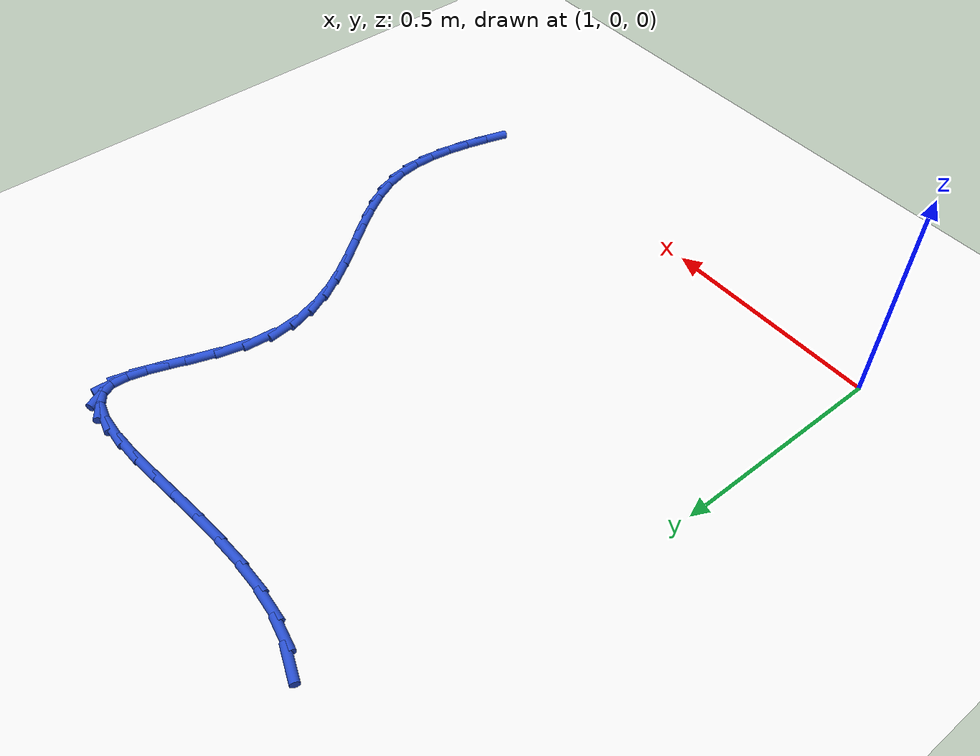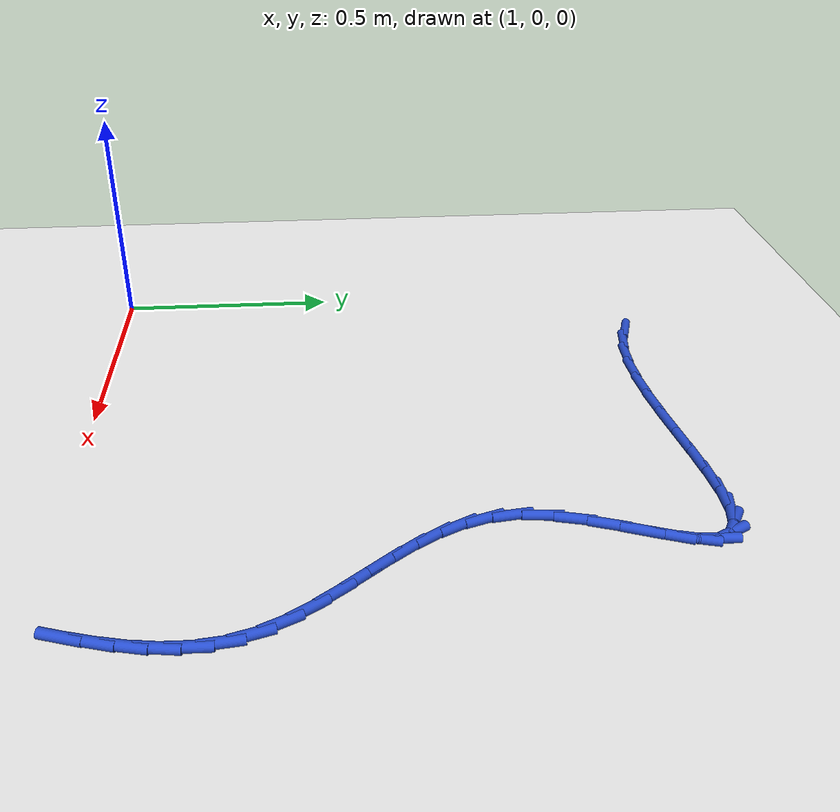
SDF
<sdf version="1.6">
 <world name="default">
  <model name="ground_plane">
   <static>1</static>
   <link name="link">
    <collision name="collision">
     <geometry><plane><normal>0 0 1</normal><size>100 100</size></plane></geometry>
     <surface><friction><ode><mu>100</mu><mu2>50</mu2></ode></friction></surface>
    </collision>
    <visual name="visual">
     <cast_shadows>0</cast_shadows>
     <geometry><plane><normal>0 0 1</normal><size>100 100</size></plane></geometry>
     <material>
      <script><uri>file://media/materials/scripts/gazebo.material</uri><name>Gazebo/WhiteGlow</name></script>
     </material>
    </visual>
   </link>
  </model>
  <model name="line">
   <link name="link_38">
    <pose>1.2145151508487457 1.2407935913253583 0.01 0 1.57 -0.3454019647571306</pose>
    <collision name="collision">
     <geometry><cylinder><radius>0.01</radius><length>0.08</length></cylinder></geometry>
    </collision>
    <visual name="visual">
     <material>
      <script><name>Gazebo/Blue</name><uri>file://media/materials/scripts/gazebo.material</uri></script>
     </material>
     <geometry><cylinder><radius>0.01</radius><length>0.08</length></cylinder></geometry>
    </visual>
   </link>
   <link name="link_39">
    <pose>1.2683129445316885 1.2214357203151238 0.01 0 1.57 -0.17920527930912616</pose>
    <collision name="collision">
     <geometry><cylinder><radius>0.01</radius><length>0.08</length></cylinder></geometry>
    </collision>
    <visual name="visual">
     <material>
      <script><name>Gazebo/Blue</name><uri>file://media/materials/scripts/gazebo.material</uri></script>
     </material>
     <geometry><cylinder><radius>0.01</radius><length>0.08</length></cylinder></geometry>
    </visual>
   </link>
   <link name="link_40">
    <pose>1.3283586011334718 1.2105585330023614 0.01 0 1.57 -0.060016969714293315</pose>
    <collision name="collision">
     <geometry><cylinder><radius>0.01</radius><length>0.08</length></cylinder></geometry>
    </collision>
    <visual name="visual">
     <material>
      <script><name>Gazebo/Blue</name><uri>file://media/materials/scripts/gazebo.material</uri></script>
     </material>
     <geometry><cylinder><radius>0.01</radius><length>0.08</length></cylinder></geometry>
    </visual>
   </link>
   <link name="link_41">
    <pose>1.3930771565046371 1.2066696510045476 0.01 0 1.57 0.02369253003492182</pose>
    <collision name="collision">
     <geometry><cylinder><radius>0.01</radius><length>0.08</length></cylinder></geometry>
    </collision>
    <visual name="visual">
     <material>
      <script><name>Gazebo/Blue</name><uri>file://media/materials/scripts/gazebo.material</uri></script>
     </material>
     <geometry><cylinder><radius>0.01</radius><length>0.08</length></cylinder></geometry>
    </visual>
   </link>
   <link name="link_42">
    <pose>1.4608936464957256 1.2082766959391587 0.01 0 1.57 0.08073897221709905</pose>
    <collision name="collision">
     <geometry><cylinder><radius>0.01</radius><length>0.08</length></cylinder></geometry>
    </collision>
    <visual name="visual">
     <material>
      <script><name>Gazebo/Blue</name><uri>file://media/materials/scripts/gazebo.material</uri></script>
     </material>
     <geometry><cylinder><radius>0.01</radius><length>0.08</length></cylinder></geometry>
    </visual>
   </link>
   <link name="link_43">
    <pose>1.5302331069572785 1.2138872894236694 0.01 0 1.57 0.11668588335635247</pose>
    <collision name="collision">
     <geometry><cylinder><radius>0.01</radius><length>0.08</length></cylinder></geometry>
    </collision>
    <visual name="visual">
     <material>
      <script><name>Gazebo/Blue</name><uri>file://media/materials/scripts/gazebo.material</uri></script>
     </material>
     <geometry><cylinder><radius>0.01</radius><length>0.08</length></cylinder></geometry>
    </visual>
   </link>
   <link name="link_44">
    <pose>1.5995205737398386 1.2220090530755574 0.01 0 1.57 0.13428143098976908</pose>
    <collision name="collision">
     <geometry><cylinder><radius>0.01</radius><length>0.08</length></cylinder></geometry>
    </collision>
    <visual name="visual">
     <material>
      <script><name>Gazebo/Blue</name><uri>file://media/materials/scripts/gazebo.material</uri></script>
     </material>
     <geometry><cylinder><radius>0.01</radius><length>0.08</length></cylinder></geometry>
    </visual>
   </link>
   <link name="link_45">
    <pose>1.6671810826939468 1.231149608512298 0.01 0 1.57 0.13365633224945683</pose>
    <collision name="collision">
     <geometry><cylinder><radius>0.01</radius><length>0.08</length></cylinder></geometry>
    </collision>
    <visual name="visual">
     <material>
      <script><name>Gazebo/Blue</name><uri>file://media/materials/scripts/gazebo.material</uri></script>
     </material>
     <geometry><cylinder><radius>0.01</radius><length>0.08</length></cylinder></geometry>
    </visual>
   </link>
   <link name="link_46">
    <pose>1.7316396696701437 1.2398165773513674 0.01 0 1.57 0.11181075503974047</pose>
    <collision name="collision">
     <geometry><cylinder><radius>0.01</radius><length>0.08</length></cylinder></geometry>
    </collision>
    <visual name="visual">
     <material>
      <script><name>Gazebo/Blue</name><uri>file://media/materials/scripts/gazebo.material</uri></script>
     </material>
     <geometry><cylinder><radius>0.01</radius><length>0.08</length></cylinder></geometry>
    </visual>
   </link>
   <link name="link_47">
    <pose>1.791321370518972 1.2465175812102418 0.01 0 1.57 0.060729087863976246</pose>
    <collision name="collision">
     <geometry><cylinder><radius>0.01</radius><length>0.08</length></cylinder></geometry>
    </collision>
    <visual name="visual">
     <material>
      <script><name>Gazebo/Blue</name><uri>file://media/materials/scripts/gazebo.material</uri></script>
     </material>
     <geometry><cylinder><radius>0.01</radius><length>0.08</length></cylinder></geometry>
    </visual>
   </link>
   <link name="link_48">
    <pose>1.844651221090973 1.2497602417063967 0.01 0 1.57 -0.03760224628985859</pose>
    <collision name="collision">
     <geometry><cylinder><radius>0.01</radius><length>0.08</length></cylinder></geometry>
    </collision>
    <visual name="visual">
     <material>
      <script><name>Gazebo/Blue</name><uri>file://media/materials/scripts/gazebo.material</uri></script>
     </material>
     <geometry><cylinder><radius>0.01</radius><length>0.08</length></cylinder></geometry>
    </visual>
   </link>
   <link name="link_49">
    <pose>1.8900542572366872 1.2480521804573088 0.01 0 1.57 -0.22325899801947988</pose>
    <collision name="collision">
     <geometry><cylinder><radius>0.01</radius><length>0.08</length></cylinder></geometry>
    </collision>
    <visual name="visual">
     <material>
      <script><name>Gazebo/Blue</name><uri>file://media/materials/scripts/gazebo.material</uri></script>
     </material>
     <geometry><cylinder><radius>0.01</radius><length>0.08</length></cylinder></geometry>
    </visual>
   </link>
   <link name="link_50">
    <pose>1.9259555148066578 1.239901019080454 0.01 0 1.57 -0.5749780105822772</pose>
    <collision name="collision">
     <geometry><cylinder><radius>0.01</radius><length>0.08</length></cylinder></geometry>
    </collision>
    <visual name="visual">
     <material>
      <script><name>Gazebo/Blue</name><uri>file://media/materials/scripts/gazebo.material</uri></script>
     </material>
     <geometry><cylinder><radius>0.01</radius><length>0.08</length></cylinder></geometry>
    </visual>
   </link>
   <link name="link_51">
    <pose>1.9507800296514257 1.223814379193309 0.01 0 1.57 -1.125641032401646</pose>
    <collision name="collision">
     <geometry><cylinder><radius>0.01</radius><length>0.08</length></cylinder></geometry>
    </collision>
    <visual name="visual">
     <material>
      <script><name>Gazebo/Blue</name><uri>file://media/materials/scripts/gazebo.material</uri></script>
     </material>
     <geometry><cylinder><radius>0.01</radius><length>0.08</length></cylinder></geometry>
    </visual>
   </link>
   <link name="link_52">
    <pose>1.9629528376215326 1.1982998824133486 0.01 0 1.57 1.5390060604563676</pose>
    <collision name="collision">
     <geometry><cylinder><radius>0.01</radius><length>0.08</length></cylinder></geometry>
    </collision>
    <visual name="visual">
     <material>
      <script><name>Gazebo/Blue</name><uri>file://media/materials/scripts/gazebo.material</uri></script>
     </material>
     <geometry><cylinder><radius>0.01</radius><length>0.08</length></cylinder></geometry>
    </visual>
   </link>
   <link name="link_53">
    <pose>1.961813433507063 1.1624706684891108 0.01 0 1.57 1.3194422107451074</pose>
    <collision name="collision">
     <geometry><cylinder><radius>0.01</radius><length>0.08</length></cylinder></geometry>
    </collision>
    <visual name="visual">
     <material>
      <script><name>Gazebo/Blue</name><uri>file://media/materials/scripts/gazebo.material</uri></script>
     </material>
     <geometry><cylinder><radius>0.01</radius><length>0.08</length></cylinder></geometry>
    </visual>
   </link>
   <link name="link_54">
    <pose>1.9503584774840803 1.1178615057997219 0.01 0 1.57 1.235468332689689</pose>
    <collision name="collision">
     <geometry><cylinder><radius>0.01</radius><length>0.08</length></cylinder></geometry>
    </collision>
    <visual name="visual">
     <material>
      <script><name>Gazebo/Blue</name><uri>file://media/materials/scripts/gazebo.material</uri></script>
     </material>
     <geometry><cylinder><radius>0.01</radius><length>0.08</length></cylinder></geometry>
    </visual>
   </link>
   <link name="link_55">
    <pose>1.932498753512809 1.0666124589288823 0.01 0 1.57 1.220736446601239</pose>
    <collision name="collision">
     <geometry><cylinder><radius>0.01</radius><length>0.08</length></cylinder></geometry>
    </collision>
    <visual name="visual">
     <material>
      <script><name>Gazebo/Blue</name><uri>file://media/materials/scripts/gazebo.material</uri></script>
     </material>
     <geometry><cylinder><radius>0.01</radius><length>0.08</length></cylinder></geometry>
    </visual>
   </link>
   <link name="link_56">
    <pose>1.9121450455534723 1.010863592460291 0.01 0 1.57 1.2557613855150864</pose>
    <collision name="collision">
     <geometry><cylinder><radius>0.01</radius><length>0.08</length></cylinder></geometry>
    </collision>
    <visual name="visual">
     <material>
      <script><name>Gazebo/Blue</name><uri>file://media/materials/scripts/gazebo.material</uri></script>
     </material>
     <geometry><cylinder><radius>0.01</radius><length>0.08</length></cylinder></geometry>
    </visual>
   </link>
   <link name="link_57">
    <pose>1.8932081375662952 0.9527549709776483 0.01 0 1.57 1.3415743992632596</pose>
    <collision name="collision">
     <geometry><cylinder><radius>0.01</radius><length>0.08</length></cylinder></geometry>
    </collision>
    <visual name="visual">
     <material>
      <script><name>Gazebo/Blue</name><uri>file://media/materials/scripts/gazebo.material</uri></script>
     </material>
     <geometry><cylinder><radius>0.01</radius><length>0.08</length></cylinder></geometry>
    </visual>
   </link>
   <link name="link_58">
    <pose>1.8795988135114996 0.8944266590646522 0.01 0 1.57 1.4928756955531615</pose>
    <collision name="collision">
     <geometry><cylinder><radius>0.01</radius><length>0.08</length></cylinder></geometry>
    </collision>
    <visual name="visual">
     <material>
      <script><name>Gazebo/Blue</name><uri>file://media/materials/scripts/gazebo.material</uri></script>
     </material>
     <geometry><cylinder><radius>0.01</radius><length>0.08</length></cylinder></geometry>
    </visual>
   </link>
   <link name="link_59">
    <pose>1.8751933458520915 0.8380032463854884 0.01 0 1.57 -1.4489586201735758</pose>
    <collision name="collision">
     <geometry><cylinder><radius>0.01</radius><length>0.08</length></cylinder></geometry>
    </collision>
    <visual name="visual">
     <material>
      <script><name>Gazebo/Blue</name><uri>file://media/materials/scripts/gazebo.material</uri></script>
     </material>
     <geometry><cylinder><radius>0.01</radius><length>0.08</length></cylinder></geometry>
    </visual>
   </link>
   <link name="link_60">
    <pose>1.8817262665772074 0.7846489683998756 0.01 0 1.57 -1.2674911674700855</pose>
    <collision name="collision">
     <geometry><cylinder><radius>0.01</radius><length>0.08</length></cylinder></geometry>
    </collision>
    <visual name="visual">
     <material>
      <script><name>Gazebo/Blue</name><uri>file://media/materials/scripts/gazebo.material</uri></script>
     </material>
     <geometry><cylinder><radius>0.01</radius><length>0.08</length></cylinder></geometry>
    </visual>
   </link>
   <link name="link_61">
    <pose>1.8975708982278172 0.7340208977413101 0.01 0 1.57 -1.1230271457881533</pose>
    <collision name="collision">
     <geometry><cylinder><radius>0.01</radius><length>0.08</length></cylinder></geometry>
    </collision>
    <visual name="visual">
     <material>
      <script><name>Gazebo/Blue</name><uri>file://media/materials/scripts/gazebo.material</uri></script>
     </material>
     <geometry><cylinder><radius>0.01</radius><length>0.08</length></cylinder></geometry>
    </visual>
   </link>
   <link name="link_62">
    <pose>1.9208065202573374 0.6856442584281683 0.01 0 1.57 -1.0186904208480327</pose>
    <collision name="collision">
     <geometry><cylinder><radius>0.01</radius><length>0.08</length></cylinder></geometry>
    </collision>
    <visual name="visual">
     <material>
      <script><name>Gazebo/Blue</name><uri>file://media/materials/scripts/gazebo.material</uri></script>
     </material>
     <geometry><cylinder><radius>0.01</radius><length>0.08</length></cylinder></geometry>
    </visual>
   </link>
   <link name="link_63">
    <pose>1.9495124121191878 0.6390442744788283 0.01 0 1.57 -0.9520152506197481</pose>
    <collision name="collision">
     <geometry><cylinder><radius>0.01</radius><length>0.08</length></cylinder></geometry>
    </collision>
    <visual name="visual">
     <material>
      <script><name>Gazebo/Blue</name><uri>file://media/materials/scripts/gazebo.material</uri></script>
     </material>
     <geometry><cylinder><radius>0.01</radius><length>0.08</length></cylinder></geometry>
    </visual>
   </link>
   <link name="link_64">
    <pose>1.981767853266784 0.5937461699116662 0.01 0 1.57 -0.9196968085622255</pose>
    <collision name="collision">
     <geometry><cylinder><radius>0.01</radius><length>0.08</length></cylinder></geometry>
    </collision>
    <visual name="visual">
     <material>
      <script><name>Gazebo/Blue</name><uri>file://media/materials/scripts/gazebo.material</uri></script>
     </material>
     <geometry><cylinder><radius>0.01</radius><length>0.08</length></cylinder></geometry>
    </visual>
   </link>
   <link name="link_65">
    <pose>2.0156521231535445 0.5492751687450594 0.01 0 1.57 -0.920033027223478</pose>
    <collision name="collision">
     <geometry><cylinder><radius>0.01</radius><length>0.08</length></cylinder></geometry>
    </collision>
    <visual name="visual">
     <material>
      <script><name>Gazebo/Blue</name><uri>file://media/materials/scripts/gazebo.material</uri></script>
     </material>
     <geometry><cylinder><radius>0.01</radius><length>0.08</length></cylinder></geometry>
    </visual>
   </link>
   <link name="link_66">
    <pose>2.049244501232888 0.505156494997385 0.01 0 1.57 -0.9538629358773237</pose>
    <collision name="collision">
     <geometry><cylinder><radius>0.01</radius><length>0.08</length></cylinder></geometry>
    </collision>
    <visual name="visual">
     <material>
      <script><name>Gazebo/Blue</name><uri>file://media/materials/scripts/gazebo.material</uri></script>
     </material>
     <geometry><cylinder><radius>0.01</radius><length>0.08</length></cylinder></geometry>
    </visual>
   </link>
   <link name="link_67">
    <pose>2.0806242669582318 0.46091537268701943 0.01 0 1.57 -1.0247641055361782</pose>
    <collision name="collision">
     <geometry><cylinder><radius>0.01</radius><length>0.08</length></cylinder></geometry>
    </collision>
    <visual name="visual">
     <material>
      <script><name>Gazebo/Blue</name><uri>file://media/materials/scripts/gazebo.material</uri></script>
     </material>
     <geometry><cylinder><radius>0.01</radius><length>0.08</length></cylinder></geometry>
    </visual>
   </link>
   <link name="link_68">
    <pose>2.107870699782993 0.41607702583234035 0.01 0 1.57 -1.1383348934530855</pose>
    <collision name="collision">
     <geometry><cylinder><radius>0.01</radius><length>0.08</length></cylinder></geometry>
    </collision>
    <visual name="visual">
     <material>
      <script><name>Gazebo/Blue</name><uri>file://media/materials/scripts/gazebo.material</uri></script>
     </material>
     <geometry><cylinder><radius>0.01</radius><length>0.08</length></cylinder></geometry>
    </visual>
   </link>
   <link name="link_69">
    <pose>2.129063079160589 0.3701666784517245 0.01 0 1.57 -1.2967825729696023</pose>
    <collision name="collision">
     <geometry><cylinder><radius>0.01</radius><length>0.08</length></cylinder></geometry>
    </collision>
    <visual name="visual">
     <material>
      <script><name>Gazebo/Blue</name><uri>file://media/materials/scripts/gazebo.material</uri></script>
     </material>
     <geometry><cylinder><radius>0.01</radius><length>0.08</length></cylinder></geometry>
    </visual>
   </link>
   <link name="link_70">
    <pose>2.142395495577533 0.3227345613662644 0.01 0 1.57 -1.4619286982267723</pose>
    <collision name="collision">
     <geometry><cylinder><radius>0.01</radius><length>0.08</length></cylinder></geometry>
    </collision>
    <visual name="visual">
     <material>
      <script><name>Gazebo/Blue</name><uri>file://media/materials/scripts/gazebo.material</uri></script>
     </material>
     <geometry><cylinder><radius>0.01</radius><length>0.08</length></cylinder></geometry>
    </visual>
   </link>
   <link name="link_71">
    <pose>2.147755001122821 0.2736996465855709 0.01 0 1.57 1.5423381108671623</pose>
    <collision name="collision">
     <geometry><cylinder><radius>0.01</radius><length>0.08</length></cylinder></geometry>
    </collision>
    <visual name="visual">
     <material>
      <script><name>Gazebo/Blue</name><uri>file://media/materials/scripts/gazebo.material</uri></script>
     </material>
     <geometry><cylinder><radius>0.01</radius><length>0.08</length></cylinder></geometry>
    </visual>
   </link>
   <link name="link_72">
    <pose>2.14631924834913 0.22326200968839907 0.01 0 1.57 1.435649102913575</pose>
    <collision name="collision">
     <geometry><cylinder><radius>0.01</radius><length>0.08</length></cylinder></geometry>
    </collision>
    <visual name="visual">
     <material>
      <script><name>Gazebo/Blue</name><uri>file://media/materials/scripts/gazebo.material</uri></script>
     </material>
     <geometry><cylinder><radius>0.01</radius><length>0.08</length></cylinder></geometry>
    </visual>
   </link>
   <link name="link_73">
    <pose>2.139298366311125 0.17162879990710767 0.01 0 1.57 1.3575270055580089</pose>
    <collision name="collision">
     <geometry><cylinder><radius>0.01</radius><length>0.08</length></cylinder></geometry>
    </collision>
    <visual name="visual">
     <material>
      <script><name>Gazebo/Blue</name><uri>file://media/materials/scripts/gazebo.material</uri></script>
     </material>
     <geometry><cylinder><radius>0.01</radius><length>0.08</length></cylinder></geometry>
    </visual>
   </link>
   <link name="link_74">
    <pose>2.1279024840634735 0.11900716647405588 0.01 0 1.57 1.3046083486557793</pose>
    <collision name="collision">
     <geometry><cylinder><radius>0.01</radius><length>0.08</length></cylinder></geometry>
    </collision>
    <visual name="visual">
     <material>
      <script><name>Gazebo/Blue</name><uri>file://media/materials/scripts/gazebo.material</uri></script>
     </material>
     <geometry><cylinder><radius>0.01</radius><length>0.08</length></cylinder></geometry>
    </visual>
   </link>
   <link name="link_75">
    <pose>2.113341730660841 0.06560425862160273 0.01 0 1.57 1.273869089832275</pose>
    <collision name="collision">
     <geometry><cylinder><radius>0.01</radius><length>0.08</length></cylinder></geometry>
    </collision>
    <visual name="visual">
     <material>
      <script><name>Gazebo/Blue</name><uri>file://media/materials/scripts/gazebo.material</uri></script>
     </material>
     <geometry><cylinder><radius>0.01</radius><length>0.08</length></cylinder></geometry>
    </visual>
   </link>
  </model>
 </world>
</sdf>
